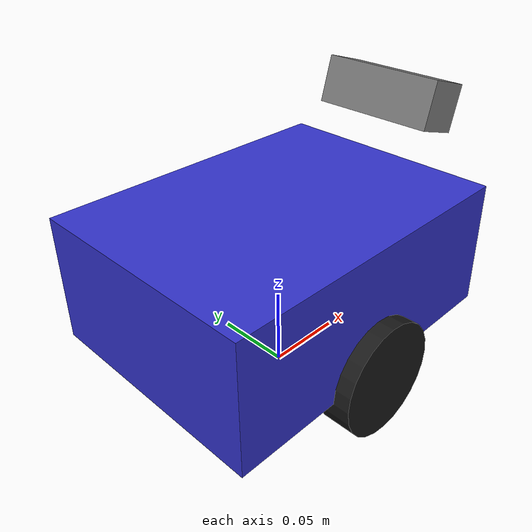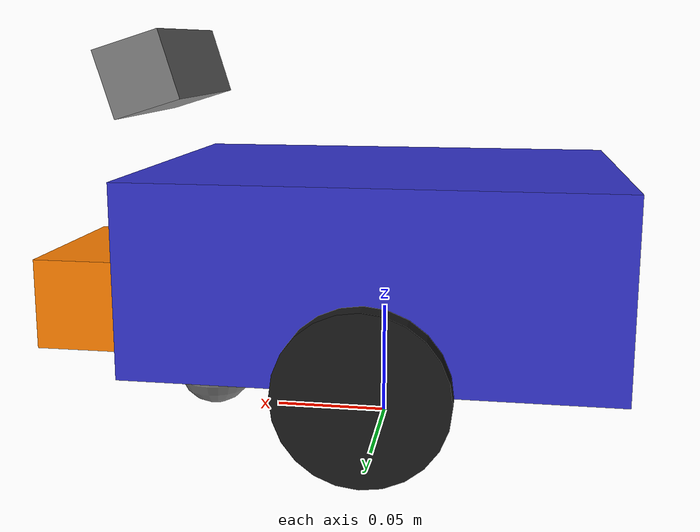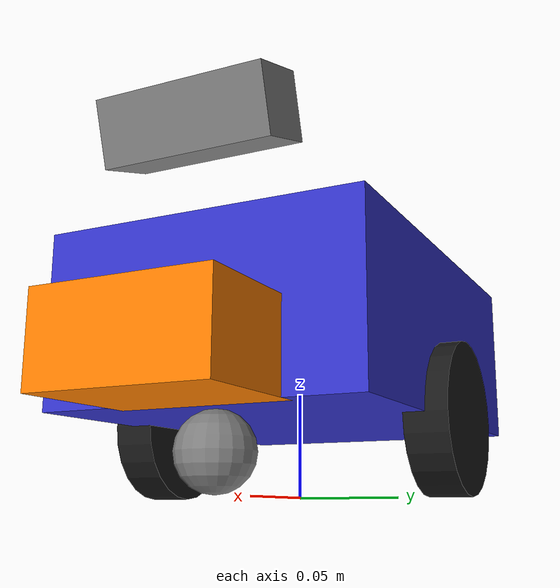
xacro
<?xml version="1.0"?>
<robot xmlns:xacro="http://www.ros.org/wiki/xacro" name="380robot">

  <!-- Robot parameters -->
  <xacro:property name="wheel_base" value="0.15"/>
  <xacro:property name="wheel_radius" value="0.035"/>
  <xacro:property name="wheel_width" value="0.02"/>
  <xacro:property name="body_length" value="0.20"/>
  <xacro:property name="body_width" value="0.15"/>
  <xacro:property name="body_height" value="0.08"/>
  <xacro:property name="camera_x" value="0.10"/>
  <xacro:property name="camera_z" value="0.12"/>
  <xacro:property name="claw_x" value="0.12"/>
  <xacro:property name="claw_z" value="0.02"/>

  <!-- Materials -->
  <material name="blue">
    <color rgba="0.2 0.2 0.8 1.0"/>
  </material>
  <material name="black">
    <color rgba="0.1 0.1 0.1 1.0"/>
  </material>
  <material name="gray">
    <color rgba="0.5 0.5 0.5 1.0"/>
  </material>
  <material name="orange">
    <color rgba="1.0 0.5 0.0 1.0"/>
  </material>

  <!-- Base footprint (on the ground) -->
  <link name="base_footprint"/>

  <!-- Base link (robot body center) -->
  <link name="base_link">
    <visual>
      <geometry>
        <box size="${body_length} ${body_width} ${body_height}"/>
      </geometry>
      <origin xyz="0 0 ${body_height/2}" rpy="0 0 0"/>
      <material name="blue"/>
    </visual>
    <collision>
      <geometry>
        <box size="${body_length} ${body_width} ${body_height}"/>
      </geometry>
      <origin xyz="0 0 ${body_height/2}" rpy="0 0 0"/>
    </collision>
    <inertial>
      <mass value="1.0"/>
      <inertia ixx="0.01" ixy="0" ixz="0" iyy="0.01" iyz="0" izz="0.01"/>
    </inertial>
  </link>

  <joint name="base_footprint_joint" type="fixed">
    <parent link="base_footprint"/>
    <child link="base_link"/>
    <origin xyz="0 0 ${wheel_radius}" rpy="0 0 0"/>
  </joint>

  <!-- Left wheel -->
  <link name="left_wheel_link">
    <visual>
      <geometry>
        <cylinder radius="${wheel_radius}" length="${wheel_width}"/>
      </geometry>
      <origin xyz="0 0 0" rpy="${pi/2} 0 0"/>
      <material name="black"/>
    </visual>
    <collision>
      <geometry>
        <cylinder radius="${wheel_radius}" length="${wheel_width}"/>
      </geometry>
      <origin xyz="0 0 0" rpy="${pi/2} 0 0"/>
    </collision>
    <inertial>
      <mass value="0.1"/>
      <inertia ixx="0.001" ixy="0" ixz="0" iyy="0.001" iyz="0" izz="0.001"/>
    </inertial>
  </link>

  <joint name="left_wheel_joint" type="continuous">
    <parent link="base_link"/>
    <child link="left_wheel_link"/>
    <origin xyz="0 ${wheel_base/2} 0" rpy="0 0 0"/>
    <axis xyz="0 1 0"/>
  </joint>

  <!-- Right wheel -->
  <link name="right_wheel_link">
    <visual>
      <geometry>
        <cylinder radius="${wheel_radius}" length="${wheel_width}"/>
      </geometry>
      <origin xyz="0 0 0" rpy="${pi/2} 0 0"/>
      <material name="black"/>
    </visual>
    <collision>
      <geometry>
        <cylinder radius="${wheel_radius}" length="${wheel_width}"/>
      </geometry>
      <origin xyz="0 0 0" rpy="${pi/2} 0 0"/>
    </collision>
    <inertial>
      <mass value="0.1"/>
      <inertia ixx="0.001" ixy="0" ixz="0" iyy="0.001" iyz="0" izz="0.001"/>
    </inertial>
  </link>

  <joint name="right_wheel_joint" type="continuous">
    <parent link="base_link"/>
    <child link="right_wheel_link"/>
    <origin xyz="0 ${-wheel_base/2} 0" rpy="0 0 0"/>
    <axis xyz="0 1 0"/>
  </joint>

  <!-- Caster wheel (front) -->
  <link name="caster_link">
    <visual>
      <geometry>
        <sphere radius="${wheel_radius * 0.5}"/>
      </geometry>
      <material name="gray"/>
    </visual>
    <collision>
      <geometry>
        <sphere radius="${wheel_radius * 0.5}"/>
      </geometry>
    </collision>
    <inertial>
      <mass value="0.05"/>
      <inertia ixx="0.0001" ixy="0" ixz="0" iyy="0.0001" iyz="0" izz="0.0001"/>
    </inertial>
  </link>

  <joint name="caster_joint" type="fixed">
    <parent link="base_link"/>
    <child link="caster_link"/>
    <origin xyz="${body_length/2 - 0.02} 0 ${-wheel_radius + wheel_radius*0.5}" rpy="0 0 0"/>
  </joint>

  <!-- Camera link -->
  <link name="camera_link">
    <visual>
      <geometry>
        <box size="0.03 0.08 0.03"/>
      </geometry>
      <material name="gray"/>
    </visual>
    <collision>
      <geometry>
        <box size="0.03 0.08 0.03"/>
      </geometry>
    </collision>
    <inertial>
      <mass value="0.05"/>
      <inertia ixx="0.0001" ixy="0" ixz="0" iyy="0.0001" iyz="0" izz="0.0001"/>
    </inertial>
  </link>

  <joint name="camera_joint" type="fixed">
    <parent link="base_link"/>
    <child link="camera_link"/>
    <!-- Camera mounted at front, tilted down to see line and objects -->
    <origin xyz="${camera_x} 0 ${camera_z}" rpy="0 0.3 0"/>
  </joint>

  <!-- Camera optical frame (standard ROS convention: Z forward, X right, Y down) -->
  <link name="camera_optical_frame"/>

  <joint name="camera_optical_joint" type="fixed">
    <parent link="camera_link"/>
    <child link="camera_optical_frame"/>
    <origin xyz="0 0 0" rpy="${-pi/2} 0 ${-pi/2}"/>
  </joint>

  <!-- Claw link -->
  <link name="claw_link">
    <visual>
      <geometry>
        <box size="0.06 0.08 0.04"/>
      </geometry>
      <material name="orange"/>
    </visual>
    <collision>
      <geometry>
        <box size="0.06 0.08 0.04"/>
      </geometry>
    </collision>
    <inertial>
      <mass value="0.1"/>
      <inertia ixx="0.0001" ixy="0" ixz="0" iyy="0.0001" iyz="0" izz="0.0001"/>
    </inertial>
  </link>

  <joint name="claw_joint" type="fixed">
    <parent link="base_link"/>
    <child link="claw_link"/>
    <origin xyz="${claw_x} 0 ${claw_z}" rpy="0 0 0"/>
  </joint>

</robot>
